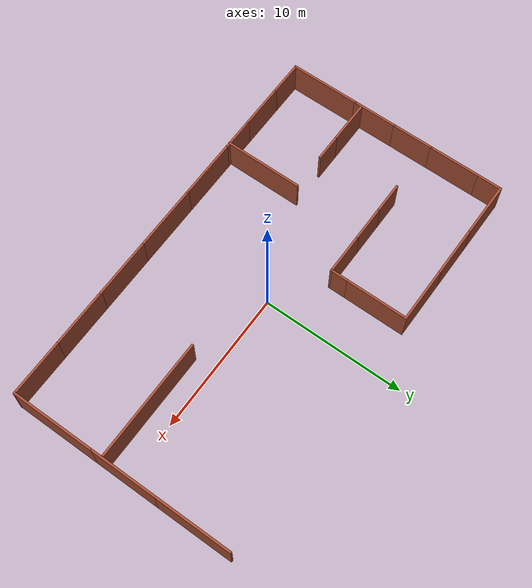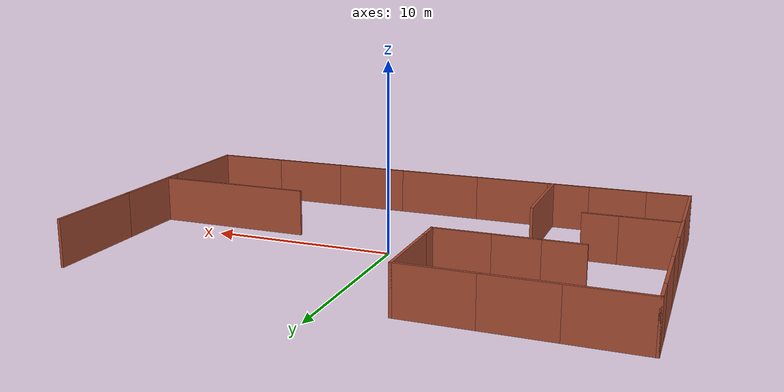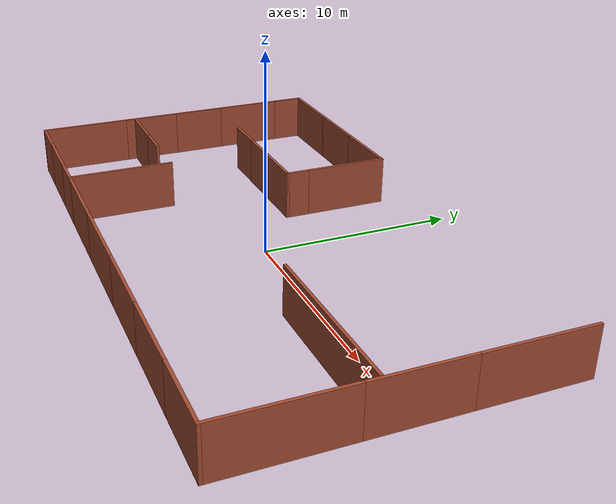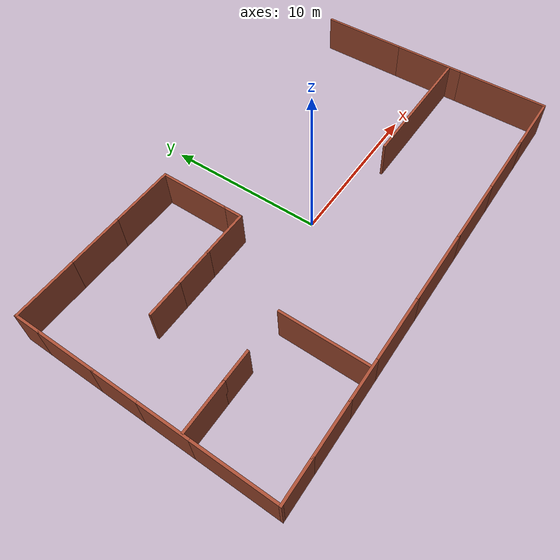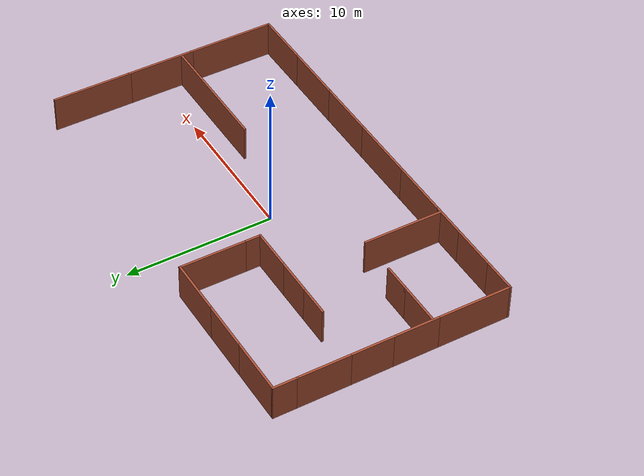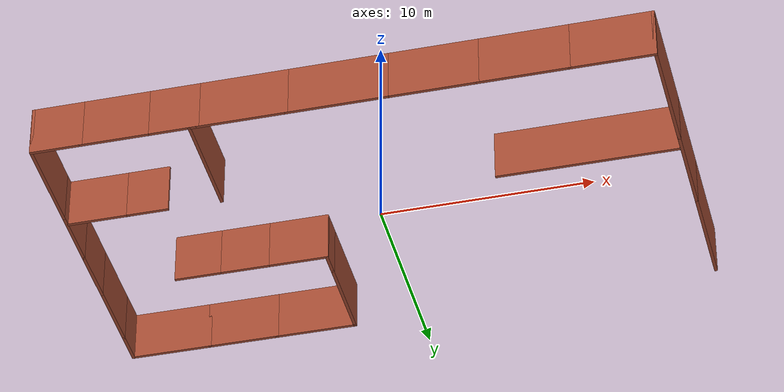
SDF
<?xml version="1.0" ?>
<sdf version="1.5">
  <model name="grey_wall">
    <static>true</static>
 <link name='Wall_27'>
        <collision name='Wall_27_Collision'>
          <geometry>
            <box>
              <size>5.5 0.15 2.5</size>
            </box>
          </geometry>
          <pose>0 0 1.25 0 -0 0</pose>
          <max_contacts>10</max_contacts>
          <surface>
            <contact>
              <ode/>
            </contact>
            <bounce/>
            <friction>
              <torsional>
                <ode/>
              </torsional>
              <ode/>
            </friction>
          </surface>
        </collision>
        <visual name='Wall_27_Visual'>
          <pose>0 0 1.25 0 -0 0</pose>
          <geometry>
            <box>
              <size>5.5 0.15 2.5</size>
            </box>
          </geometry>
          <material>
            <script>
              <uri>file://media/materials/scripts/gazebo.material</uri>
              <name>Gazebo/Bricks</name>
            </script>
            <ambient>1 1 1 1</ambient>
          </material>
          <meta>
            <layer>0</layer>
          </meta>
        </visual>
        <pose>14.275 5.125 0 0 -0 -1.5708</pose>
        <self_collide>0</self_collide>
        <enable_wind>0</enable_wind>
        <kinematic>0</kinematic>
      </link>
      <link name='Wall_28'>
        <collision name='Wall_28_Collision'>
          <geometry>
            <box>
              <size>4.75 0.15 2.5</size>
            </box>
          </geometry>
          <pose>0 0 1.25 0 -0 0</pose>
          <max_contacts>10</max_contacts>
          <surface>
            <contact>
              <ode/>
            </contact>
            <bounce/>
            <friction>
              <torsional>
                <ode/>
              </torsional>
              <ode/>
            </friction>
          </surface>
        </collision>
        <visual name='Wall_28_Visual'>
          <pose>0 0 1.25 0 -0 0</pose>
          <geometry>
            <box>
              <size>4.75 0.15 2.5</size>
            </box>
          </geometry>
          <material>
            <script>
              <uri>file://media/materials/scripts/gazebo.material</uri>
              <name>Gazebo/Bricks</name>
            </script>
            <ambient>1 1 1 1</ambient>
          </material>
          <meta>
            <layer>0</layer>
          </meta>
        </visual>
        <pose>14.275 0.15 0 0 -0 -1.5708</pose>
        <self_collide>0</self_collide>
        <enable_wind>0</enable_wind>
        <kinematic>0</kinematic>
      </link>
      <link name='Wall_29'>
        <collision name='Wall_29_Collision'>
          <geometry>
            <box>
              <size>6 0.15 2.5</size>
            </box>
          </geometry>
          <pose>0 0 1.25 0 -0 0</pose>
          <max_contacts>10</max_contacts>
          <surface>
            <contact>
              <ode/>
            </contact>
            <bounce/>
            <friction>
              <torsional>
                <ode/>
              </torsional>
              <ode/>
            </friction>
          </surface>
        </collision>
        <visual name='Wall_29_Visual'>
          <pose>0 0 1.25 0 -0 0</pose>
          <geometry>
            <box>
              <size>6 0.15 2.5</size>
            </box>
          </geometry>
          <material>
            <script>
              <uri>file://media/materials/scripts/gazebo.material</uri>
              <name>Gazebo/Bricks</name>
            </script>
            <ambient>1 1 1 1</ambient>
          </material>
          <meta>
            <layer>0</layer>
          </meta>
        </visual>
        <pose>14.275 -5.075 0 0 -0 -1.5708</pose>
        <self_collide>0</self_collide>
        <enable_wind>0</enable_wind>
        <kinematic>0</kinematic>
      </link>
      <link name='Wall_30'>
        <collision name='Wall_30_Collision'>
          <geometry>
            <box>
              <size>4 0.15 2.5</size>
            </box>
          </geometry>
          <pose>0 0 1.25 0 -0 0</pose>
          <max_contacts>10</max_contacts>
          <surface>
            <contact>
              <ode/>
            </contact>
            <bounce/>
            <friction>
              <torsional>
                <ode/>
              </torsional>
              <ode/>
            </friction>
          </surface>
        </collision>
        <visual name='Wall_30_Visual'>
          <pose>0 0 1.25 0 -0 0</pose>
          <geometry>
            <box>
              <size>4 0.15 2.5</size>
            </box>
          </geometry>
          <material>
            <script>
              <uri>file://media/materials/scripts/gazebo.material</uri>
              <name>Gazebo/Bricks</name>
            </script>
            <ambient>1 1 1 1</ambient>
          </material>
          <meta>
            <layer>0</layer>
          </meta>
        </visual>
        <pose>12.35 -8 0 0 -0 3.14159</pose>
        <self_collide>0</self_collide>
        <enable_wind>0</enable_wind>
        <kinematic>0</kinematic>
      </link>
      <link name='Wall_31'>
        <collision name='Wall_31_Collision'>
          <geometry>
            <box>
              <size>4.25 0.15 2.5</size>
            </box>
          </geometry>
          <pose>0 0 1.25 0 -0 0</pose>
          <max_contacts>10</max_contacts>
          <surface>
            <contact>
              <ode/>
            </contact>
            <bounce/>
            <friction>
              <torsional>
                <ode/>
              </torsional>
              <ode/>
            </friction>
          </surface>
        </collision>
        <visual name='Wall_31_Visual'>
          <pose>0 0 1.25 0 -0 0</pose>
          <geometry>
            <box>
              <size>4.25 0.15 2.5</size>
            </box>
          </geometry>
          <material>
            <script>
              <uri>file://media/materials/scripts/gazebo.material</uri>
              <name>Gazebo/Bricks</name>
            </script>
            <ambient>1 1 1 1</ambient>
          </material>
          <meta>
            <layer>0</layer>
          </meta>
        </visual>
        <pose>8.375 -8 0 0 -0 3.14159</pose>
        <self_collide>0</self_collide>
        <enable_wind>0</enable_wind>
        <kinematic>0</kinematic>
      </link>
      <link name='Wall_32'>
        <collision name='Wall_32_Collision'>
          <geometry>
            <box>
              <size>4.25 0.15 2.5</size>
            </box>
          </geometry>
          <pose>0 0 1.25 0 -0 0</pose>
          <max_contacts>10</max_contacts>
          <surface>
            <contact>
              <ode/>
            </contact>
            <bounce/>
            <friction>
              <torsional>
                <ode/>
              </torsional>
              <ode/>
            </friction>
          </surface>
        </collision>
        <visual name='Wall_32_Visual'>
          <pose>0 0 1.25 0 -0 0</pose>
          <geometry>
            <box>
              <size>4.25 0.15 2.5</size>
            </box>
          </geometry>
          <material>
            <script>
              <uri>file://media/materials/scripts/gazebo.material</uri>
              <name>Gazebo/Bricks</name>
            </script>
            <ambient>1 1 1 1</ambient>
          </material>
          <meta>
            <layer>0</layer>
          </meta>
        </visual>
        <pose>4.275 -8 0 0 -0 3.14159</pose>
        <self_collide>0</self_collide>
        <enable_wind>0</enable_wind>
        <kinematic>0</kinematic>
      </link>
      <link name='Wall_33'>
        <collision name='Wall_33_Collision'>
          <geometry>
            <box>
              <size>4.75 0.15 2.5</size>
            </box>
          </geometry>
          <pose>0 0 1.25 0 -0 0</pose>
          <max_contacts>10</max_contacts>
          <surface>
            <contact>
              <ode/>
            </contact>
            <bounce/>
            <friction>
              <torsional>
                <ode/>
              </torsional>
              <ode/>
            </friction>
          </surface>
        </collision>
        <visual name='Wall_33_Visual'>
          <pose>0 0 1.25 0 -0 0</pose>
          <geometry>
            <box>
              <size>4.75 0.15 2.5</size>
            </box>
          </geometry>
          <material>
            <script>
              <uri>file://media/materials/scripts/gazebo.material</uri>
              <name>Gazebo/Bricks</name>
            </script>
            <ambient>1 1 1 1</ambient>
          </material>
          <meta>
            <layer>0</layer>
          </meta>
        </visual>
        <pose>-0.075 -8 0 0 -0 3.14159</pose>
        <self_collide>0</self_collide>
        <enable_wind>0</enable_wind>
        <kinematic>0</kinematic>
      </link>
      <link name='Wall_34'>
        <collision name='Wall_34_Collision'>
          <geometry>
            <box>
              <size>4.25 0.15 2.5</size>
            </box>
          </geometry>
          <pose>0 0 1.25 0 -0 0</pose>
          <max_contacts>10</max_contacts>
          <surface>
            <contact>
              <ode/>
            </contact>
            <bounce/>
            <friction>
              <torsional>
                <ode/>
              </torsional>
              <ode/>
            </friction>
          </surface>
        </collision>
        <visual name='Wall_34_Visual'>
          <pose>0 0 1.25 0 -0 0</pose>
          <geometry>
            <box>
              <size>4.25 0.15 2.5</size>
            </box>
          </geometry>
          <material>
            <script>
              <uri>file://media/materials/scripts/gazebo.material</uri>
              <name>Gazebo/Bricks</name>
            </script>
            <ambient>1 1 1 1</ambient>
          </material>
          <meta>
            <layer>0</layer>
          </meta>
        </visual>
        <pose>-4.425 -8 0 0 -0 3.14159</pose>
        <self_collide>0</self_collide>
        <enable_wind>0</enable_wind>
        <kinematic>0</kinematic>
      </link>
      <link name='Wall_35'>
        <collision name='Wall_35_Collision'>
          <geometry>
            <box>
              <size>2.5 0.15 2.5</size>
            </box>
          </geometry>
          <pose>0 0 1.25 0 -0 0</pose>
          <max_contacts>10</max_contacts>
          <surface>
            <contact>
              <ode/>
            </contact>
            <bounce/>
            <friction>
              <torsional>
                <ode/>
              </torsional>
              <ode/>
            </friction>
          </surface>
        </collision>
        <visual name='Wall_35_Visual'>
          <pose>0 0 1.25 0 -0 0</pose>
          <geometry>
            <box>
              <size>2.5 0.15 2.5</size>
            </box>
          </geometry>
          <material>
            <script>
              <uri>file://media/materials/scripts/gazebo.material</uri>
              <name>Gazebo/Bricks</name>
            </script>
            <ambient>1 1 1 1</ambient>
          </material>
          <meta>
            <layer>0</layer>
          </meta>
        </visual>
        <pose>-7.65 -8 0 0 -0 3.14159</pose>
        <self_collide>0</self_collide>
        <enable_wind>0</enable_wind>
        <kinematic>0</kinematic>
      </link>
      <link name='Wall_36'>
        <collision name='Wall_36_Collision'>
          <geometry>
            <box>
              <size>3.25 0.15 2.5</size>
            </box>
          </geometry>
          <pose>0 0 1.25 0 -0 0</pose>
          <max_contacts>10</max_contacts>
          <surface>
            <contact>
              <ode/>
            </contact>
            <bounce/>
            <friction>
              <torsional>
                <ode/>
              </torsional>
              <ode/>
            </friction>
          </surface>
        </collision>
        <visual name='Wall_36_Visual'>
          <pose>0 0 1.25 0 -0 0</pose>
          <geometry>
            <box>
              <size>3.25 0.15 2.5</size>
            </box>
          </geometry>
          <material>
            <script>
              <uri>file://media/materials/scripts/gazebo.material</uri>
              <name>Gazebo/Bricks</name>
            </script>
            <ambient>1 1 1 1</ambient>
          </material>
          <meta>
            <layer>0</layer>
          </meta>
        </visual>
        <pose>-10.375 -8 0 0 -0 3.14159</pose>
        <self_collide>0</self_collide>
        <enable_wind>0</enable_wind>
        <kinematic>0</kinematic>
      </link>
      <link name='Wall_37'>
        <collision name='Wall_37_Collision'>
          <geometry>
            <box>
              <size>2.5 0.15 2.5</size>
            </box>
          </geometry>
          <pose>0 0 1.25 0 -0 0</pose>
          <max_contacts>10</max_contacts>
          <surface>
            <contact>
              <ode/>
            </contact>
            <bounce/>
            <friction>
              <torsional>
                <ode/>
              </torsional>
              <ode/>
            </friction>
          </surface>
        </collision>
        <visual name='Wall_37_Visual'>
          <pose>0 0 1.25 0 -0 0</pose>
          <geometry>
            <box>
              <size>2.5 0.15 2.5</size>
            </box>
          </geometry>
          <material>
            <script>
              <uri>file://media/materials/scripts/gazebo.material</uri>
              <name>Gazebo/Bricks</name>
            </script>
            <ambient>1 1 1 1</ambient>
          </material>
          <meta>
            <layer>0</layer>
          </meta>
        </visual>
        <pose>-13.1 -8 0 0 -0 3.14159</pose>
        <self_collide>0</self_collide>
        <enable_wind>0</enable_wind>
        <kinematic>0</kinematic>
      </link>
      <link name='Wall_38'>
        <collision name='Wall_38_Collision'>
          <geometry>
            <box>
              <size>5 0.15 2.5</size>
            </box>
          </geometry>
          <pose>0 0 1.25 0 -0 0</pose>
          <max_contacts>10</max_contacts>
          <surface>
            <contact>
              <ode/>
            </contact>
            <bounce/>
            <friction>
              <torsional>
                <ode/>
              </torsional>
              <ode/>
            </friction>
          </surface>
        </collision>
        <visual name='Wall_38_Visual'>
          <pose>0 0 1.25 0 -0 0</pose>
          <geometry>
            <box>
              <size>5 0.15 2.5</size>
            </box>
          </geometry>
          <material>
            <script>
              <uri>file://media/materials/scripts/gazebo.material</uri>
              <name>Gazebo/Bricks</name>
            </script>
            <ambient>1 1 1 1</ambient>
          </material>
          <meta>
            <layer>0</layer>
          </meta>
        </visual>
        <pose>-14.275 -5.575 0 0 -0 1.5708</pose>
        <self_collide>0</self_collide>
        <enable_wind>0</enable_wind>
        <kinematic>0</kinematic>
      </link>
      <link name='Wall_39'>
        <collision name='Wall_39_Collision'>
          <geometry>
            <box>
              <size>3.25 0.15 2.5</size>
            </box>
          </geometry>
          <pose>0 0 1.25 0 -0 0</pose>
          <max_contacts>10</max_contacts>
          <surface>
            <contact>
              <ode/>
            </contact>
            <bounce/>
            <friction>
              <torsional>
                <ode/>
              </torsional>
              <ode/>
            </friction>
          </surface>
        </collision>
        <visual name='Wall_39_Visual'>
          <pose>0 0 1.25 0 -0 0</pose>
          <geometry>
            <box>
              <size>3.25 0.15 2.5</size>
            </box>
          </geometry>
          <material>
            <script>
              <uri>file://media/materials/scripts/gazebo.material</uri>
              <name>Gazebo/Bricks</name>
            </script>
            <ambient>1 1 1 1</ambient>
          </material>
          <meta>
            <layer>0</layer>
          </meta>
        </visual>
        <pose>-14.275 -1.6 0 0 -0 1.5708</pose>
        <self_collide>0</self_collide>
        <enable_wind>0</enable_wind>
        <kinematic>0</kinematic>
      </link>
      <link name='Wall_40'>
        <collision name='Wall_40_Collision'>
          <geometry>
            <box>
              <size>3 0.15 2.5</size>
            </box>
          </geometry>
          <pose>0 0 1.25 0 -0 0</pose>
          <max_contacts>10</max_contacts>
          <surface>
            <contact>
              <ode/>
            </contact>
            <bounce/>
            <friction>
              <torsional>
                <ode/>
              </torsional>
              <ode/>
            </friction>
          </surface>
        </collision>
        <visual name='Wall_40_Visual'>
          <pose>0 0 1.25 0 -0 0</pose>
          <geometry>
            <box>
              <size>3 0.15 2.5</size>
            </box>
          </geometry>
          <material>
            <script>
              <uri>file://media/materials/scripts/gazebo.material</uri>
              <name>Gazebo/Bricks</name>
            </script>
            <ambient>1 1 1 1</ambient>
          </material>
          <meta>
            <layer>0</layer>
          </meta>
        </visual>
        <pose>-14.275 1.375 0 0 -0 1.5708</pose>
        <self_collide>0</self_collide>
        <enable_wind>0</enable_wind>
        <kinematic>0</kinematic>
      </link>
      <link name='Wall_41'>
        <collision name='Wall_41_Collision'>
          <geometry>
            <box>
              <size>3.75 0.15 2.5</size>
            </box>
          </geometry>
          <pose>0 0 1.25 0 -0 0</pose>
          <max_contacts>10</max_contacts>
          <surface>
            <contact>
              <ode/>
            </contact>
            <bounce/>
            <friction>
              <torsional>
                <ode/>
              </torsional>
              <ode/>
            </friction>
          </surface>
        </collision>
        <visual name='Wall_41_Visual'>
          <pose>0 0 1.25 0 -0 0</pose>
          <geometry>
            <box>
              <size>3.75 0.15 2.5</size>
            </box>
          </geometry>
          <material>
            <script>
              <uri>file://media/materials/scripts/gazebo.material</uri>
              <name>Gazebo/Bricks</name>
            </script>
            <ambient>1 1 1 1</ambient>
          </material>
          <meta>
            <layer>0</layer>
          </meta>
        </visual>
        <pose>-14.275 4.6 0 0 -0 1.5708</pose>
        <self_collide>0</self_collide>
        <enable_wind>0</enable_wind>
        <kinematic>0</kinematic>
      </link>
      <link name='Wall_42'>
        <collision name='Wall_42_Collision'>
          <geometry>
            <box>
              <size>1.75 0.15 2.5</size>
            </box>
          </geometry>
          <pose>0 0 1.25 0 -0 0</pose>
          <max_contacts>10</max_contacts>
          <surface>
            <contact>
              <ode/>
            </contact>
            <bounce/>
            <friction>
              <torsional>
                <ode/>
              </torsional>
              <ode/>
            </friction>
          </surface>
        </collision>
        <visual name='Wall_42_Visual'>
          <pose>0 0 1.25 0 -0 0</pose>
          <geometry>
            <box>
              <size>1.75 0.15 2.5</size>
            </box>
          </geometry>
          <material>
            <script>
              <uri>file://media/materials/scripts/gazebo.material</uri>
              <name>Gazebo/Bricks</name>
            </script>
            <ambient>1 1 1 1</ambient>
          </material>
          <meta>
            <layer>0</layer>
          </meta>
        </visual>
        <pose>-14.275 7.2 0 0 -0 1.5708</pose>
        <self_collide>0</self_collide>
        <enable_wind>0</enable_wind>
        <kinematic>0</kinematic>
      </link>
      <link name='Wall_45'>
        <collision name='Wall_45_Collision'>
          <geometry>
            <box>
              <size>4 0.15 2.5</size>
            </box>
          </geometry>
          <pose>0 0 1.25 0 -0 0</pose>
          <max_contacts>10</max_contacts>
          <surface>
            <contact>
              <ode/>
            </contact>
            <bounce/>
            <friction>
              <torsional>
                <ode/>
              </torsional>
              <ode/>
            </friction>
          </surface>
        </collision>
        <visual name='Wall_45_Visual'>
          <pose>0 0 1.25 0 -0 0</pose>
          <geometry>
            <box>
              <size>4 0.15 2.5</size>
            </box>
          </geometry>
          <material>
            <script>
              <uri>file://media/materials/scripts/gazebo.material</uri>
              <name>Gazebo/Bricks</name>
            </script>
            <ambient>1 1 1 1</ambient>
          </material>
          <meta>
            <layer>0</layer>
          </meta>
        </visual>
        <pose>-12.35 8 0 0 -0 0</pose>
        <self_collide>0</self_collide>
        <enable_wind>0</enable_wind>
        <kinematic>0</kinematic>
      </link>
      <link name='Wall_46'>
        <collision name='Wall_46_Collision'>
          <geometry>
            <box>
              <size>3.5 0.15 2.5</size>
            </box>
          </geometry>
          <pose>0 0 1.25 0 -0 0</pose>
          <max_contacts>10</max_contacts>
          <surface>
            <contact>
              <ode/>
            </contact>
            <bounce/>
            <friction>
              <torsional>
                <ode/>
              </torsional>
              <ode/>
            </friction>
          </surface>
        </collision>
        <visual name='Wall_46_Visual'>
          <pose>0 0 1.25 0 -0 0</pose>
          <geometry>
            <box>
              <size>3.5 0.15 2.5</size>
            </box>
          </geometry>
          <material>
            <script>
              <uri>file://media/materials/scripts/gazebo.material</uri>
              <name>Gazebo/Bricks</name>
            </script>
            <ambient>1 1 1 1</ambient>
          </material>
          <meta>
            <layer>0</layer>
          </meta>
        </visual>
        <pose>-8.75 8 0 0 -0 0</pose>
        <self_collide>0</self_collide>
        <enable_wind>0</enable_wind>
        <kinematic>0</kinematic>
      </link>
      <link name='Wall_47'>
        <collision name='Wall_47_Collision'>
          <geometry>
            <box>
              <size>4 0.15 2.5</size>
            </box>
          </geometry>
          <pose>0 0 1.25 0 -0 0</pose>
          <max_contacts>10</max_contacts>
          <surface>
            <contact>
              <ode/>
            </contact>
            <bounce/>
            <friction>
              <torsional>
                <ode/>
              </torsional>
              <ode/>
            </friction>
          </surface>
        </collision>
        <visual name='Wall_47_Visual'>
          <pose>0 0 1.25 0 -0 0</pose>
          <geometry>
            <box>
              <size>4 0.15 2.5</size>
            </box>
          </geometry>
          <material>
            <script>
              <uri>file://media/materials/scripts/gazebo.material</uri>
              <name>Gazebo/Bricks</name>
            </script>
            <ambient>1 1 1 1</ambient>
          </material>
          <meta>
            <layer>0</layer>
          </meta>
        </visual>
        <pose>-5.15 8 0 0 -0 0</pose>
        <self_collide>0</self_collide>
        <enable_wind>0</enable_wind>
        <kinematic>0</kinematic>
      </link>
      <link name='Wall_48'>
        <collision name='Wall_48_Collision'>
          <geometry>
            <box>
              <size>4.5 0.15 2.5</size>
            </box>
          </geometry>
          <pose>0 0 1.25 0 -0 0</pose>
          <max_contacts>10</max_contacts>
          <surface>
            <contact>
              <ode/>
            </contact>
            <bounce/>
            <friction>
              <torsional>
                <ode/>
              </torsional>
              <ode/>
            </friction>
          </surface>
        </collision>
        <visual name='Wall_48_Visual'>
          <pose>0 0 1.25 0 -0 0</pose>
          <geometry>
            <box>
              <size>4.5 0.15 2.5</size>
            </box>
          </geometry>
          <material>
            <script>
              <uri>file://media/materials/scripts/gazebo.material</uri>
              <name>Gazebo/Bricks</name>
            </script>
            <ambient>1 1 1 1</ambient>
          </material>
          <meta>
            <layer>0</layer>
          </meta>
        </visual>
        <pose>-3.225 5.825 0 0 -0 -1.5708</pose>
        <self_collide>0</self_collide>
        <enable_wind>0</enable_wind>
        <kinematic>0</kinematic>
      </link>
      <link name='Wall_49'>
        <collision name='Wall_49_Collision'>
          <geometry>
            <box>
              <size>1.25 0.15 2.5</size>
            </box>
          </geometry>
          <pose>0 0 1.25 0 -0 0</pose>
          <max_contacts>10</max_contacts>
          <surface>
            <contact>
              <ode/>
            </contact>
            <bounce/>
            <friction>
              <torsional>
                <ode/>
              </torsional>
              <ode/>
            </friction>
          </surface>
        </collision>
        <visual name='Wall_49_Visual'>
          <pose>0 0 1.25 0 -0 0</pose>
          <geometry>
            <box>
              <size>1.25 0.15 2.5</size>
            </box>
          </geometry>
          <material>
            <script>
              <uri>file://media/materials/scripts/gazebo.material</uri>
              <name>Gazebo/Bricks</name>
            </script>
            <ambient>1 1 1 1</ambient>
          </material>
          <meta>
            <layer>0</layer>
          </meta>
        </visual>
        <pose>-3.225 3.1 0 0 -0 -1.5708</pose>
        <self_collide>0</self_collide>
        <enable_wind>0</enable_wind>
        <kinematic>0</kinematic>
      </link>
      <link name='Wall_50'>
        <collision name='Wall_50_Collision'>
          <geometry>
            <box>
              <size>3 0.15 2.5</size>
            </box>
          </geometry>
          <pose>0 0 1.25 0 -0 0</pose>
          <max_contacts>10</max_contacts>
          <surface>
            <contact>
              <ode/>
            </contact>
            <bounce/>
            <friction>
              <torsional>
                <ode/>
              </torsional>
              <ode/>
            </friction>
          </surface>
        </collision>
        <visual name='Wall_50_Visual'>
          <pose>0 0 1.25 0 -0 0</pose>
          <geometry>
            <box>
              <size>3 0.15 2.5</size>
            </box>
          </geometry>
          <material>
            <script>
              <uri>file://media/materials/scripts/gazebo.material</uri>
              <name>Gazebo/Bricks</name>
            </script>
            <ambient>1 1 1 1</ambient>
          </material>
          <meta>
            <layer>0</layer>
          </meta>
        </visual>
        <pose>-4.65 2.55 0 0 -0 3.14159</pose>
        <self_collide>0</self_collide>
        <enable_wind>0</enable_wind>
        <kinematic>0</kinematic>
      </link>
      <link name='Wall_51'>
        <collision name='Wall_51_Collision'>
          <geometry>
            <box>
              <size>2.5 0.15 2.5</size>
            </box>
          </geometry>
          <pose>0 0 1.25 0 -0 0</pose>
          <max_contacts>10</max_contacts>
          <surface>
            <contact>
              <ode/>
            </contact>
            <bounce/>
            <friction>
              <torsional>
                <ode/>
              </torsional>
              <ode/>
            </friction>
          </surface>
        </collision>
        <visual name='Wall_51_Visual'>
          <pose>0 0 1.25 0 -0 0</pose>
          <geometry>
            <box>
              <size>2.5 0.15 2.5</size>
            </box>
          </geometry>
          <material>
            <script>
              <uri>file://media/materials/scripts/gazebo.material</uri>
              <name>Gazebo/Bricks</name>
            </script>
            <ambient>1 1 1 1</ambient>
          </material>
          <meta>
            <layer>0</layer>
          </meta>
        </visual>
        <pose>-7.25 2.55 0 0 -0 3.14159</pose>
        <self_collide>0</self_collide>
        <enable_wind>0</enable_wind>
        <kinematic>0</kinematic>
      </link>
      <link name='Wall_52'>
        <collision name='Wall_52_Collision'>
          <geometry>
            <box>
              <size>2.25 0.15 2.5</size>
            </box>
          </geometry>
          <pose>0 0 1.25 0 -0 0</pose>
          <max_contacts>10</max_contacts>
          <surface>
            <contact>
              <ode/>
            </contact>
            <bounce/>
            <friction>
              <torsional>
                <ode/>
              </torsional>
              <ode/>
            </friction>
          </surface>
        </collision>
        <visual name='Wall_52_Visual'>
          <pose>0 0 1.25 0 -0 0</pose>
          <geometry>
            <box>
              <size>2.25 0.15 2.5</size>
            </box>
          </geometry>
          <material>
            <script>
              <uri>file://media/materials/scripts/gazebo.material</uri>
              <name>Gazebo/Bricks</name>
            </script>
            <ambient>1 1 1 1</ambient>
          </material>
          <meta>
            <layer>0</layer>
          </meta>
        </visual>
        <pose>-9.475 2.55 0 0 -0 3.14159</pose>
        <self_collide>0</self_collide>
        <enable_wind>0</enable_wind>
        <kinematic>0</kinematic>
      </link>
      <link name='Wall_54'>
        <collision name='Wall_54_Collision'>
          <geometry>
            <box>
              <size>5.5 0.15 2.5</size>
            </box>
          </geometry>
          <pose>0 0 1.25 0 -0 0</pose>
          <max_contacts>10</max_contacts>
          <surface>
            <contact>
              <ode/>
            </contact>
            <bounce/>
            <friction>
              <torsional>
                <ode/>
              </torsional>
              <ode/>
            </friction>
          </surface>
        </collision>
        <visual name='Wall_54_Visual'>
          <pose>0 0 1.25 0 -0 0</pose>
          <geometry>
            <box>
              <size>5.5 0.15 2.5</size>
            </box>
          </geometry>
          <material>
            <script>
              <uri>file://media/materials/scripts/gazebo.material</uri>
              <name>Gazebo/Bricks</name>
            </script>
            <ambient>1 1 1 1</ambient>
          </material>
          <meta>
            <layer>0</layer>
          </meta>
        </visual>
        <pose>-6.86678 -5.31511 0 0 -0 1.5708</pose>
        <self_collide>0</self_collide>
        <enable_wind>0</enable_wind>
        <kinematic>0</kinematic>
      </link>
      <link name='Wall_57'>
        <collision name='Wall_57_Collision'>
          <geometry>
            <box>
              <size>3 0.15 2.5</size>
            </box>
          </geometry>
          <pose>0 0 1.25 0 -0 0</pose>
          <max_contacts>10</max_contacts>
          <surface>
            <contact>
              <ode/>
            </contact>
            <bounce/>
            <friction>
              <torsional>
                <ode/>
              </torsional>
              <ode/>
            </friction>
          </surface>
        </collision>
        <visual name='Wall_57_Visual'>
          <pose>0 0 1.25 0 -0 0</pose>
          <geometry>
            <box>
              <size>3 0.15 2.5</size>
            </box>
          </geometry>
          <material>
            <script>
              <uri>file://media/materials/scripts/gazebo.material</uri>
              <name>Gazebo/Bricks</name>
            </script>
            <ambient>1 1 1 1</ambient>
          </material>
          <meta>
            <layer>0</layer>
          </meta>
        </visual>
        <pose>-12.7491 -2.64355 0 0 -0 0</pose>
        <self_collide>0</self_collide>
        <enable_wind>0</enable_wind>
        <kinematic>0</kinematic>
      </link>
      <link name='Wall_60'>
        <collision name='Wall_60_Collision'>
          <geometry>
            <box>
              <size>2 0.15 2.5</size>
            </box>
          </geometry>
          <pose>0 0 1.25 0 -0 0</pose>
          <max_contacts>10</max_contacts>
          <surface>
            <contact>
              <ode/>
            </contact>
            <bounce/>
            <friction>
              <torsional>
                <ode/>
              </torsional>
              <ode/>
            </friction>
          </surface>
        </collision>
        <visual name='Wall_60_Visual'>
          <pose>0 0 1.25 0 -0 0</pose>
          <geometry>
            <box>
              <size>2 0.15 2.5</size>
            </box>
          </geometry>
          <material>
            <script>
              <uri>file://media/materials/scripts/gazebo.material</uri>
              <name>Gazebo/Bricks</name>
            </script>
            <ambient>1 1 1 1</ambient>
          </material>
          <meta>
            <layer>0</layer>
          </meta>
        </visual>
        <pose>-10.3991 -2.64355 0 0 -0 0</pose>
        <self_collide>0</self_collide>
        <enable_wind>0</enable_wind>
        <kinematic>0</kinematic>
      </link>
      <link name='Wall_63'>
        <collision name='Wall_63_Collision'>
          <geometry>
            <box>
              <size>8.5 0.15 2.5</size>
            </box>
          </geometry>
          <pose>0 0 1.25 0 -0 0</pose>
          <max_contacts>10</max_contacts>
          <surface>
            <contact>
              <ode/>
            </contact>
            <bounce/>
            <friction>
              <torsional>
                <ode/>
              </torsional>
              <ode/>
            </friction>
          </surface>
        </collision>
        <visual name='Wall_63_Visual'>
          <pose>0 0 1.25 0 -0 0</pose>
          <geometry>
            <box>
              <size>8.5 0.15 2.5</size>
            </box>
          </geometry>
          <material>
            <script>
              <uri>file://media/materials/scripts/gazebo.material</uri>
              <name>Gazebo/Bricks</name>
            </script>
            <ambient>1 1 1 1</ambient>
          </material>
          <meta>
            <layer>0</layer>
          </meta>
        </visual>
        <pose>9.93745 -1.38741 0 0 -0 3.14159</pose>
        <self_collide>0</self_collide>
        <enable_wind>0</enable_wind>
        <kinematic>0</kinematic>
      </link>
      <static>1</static>
    </model>

</sdf>
